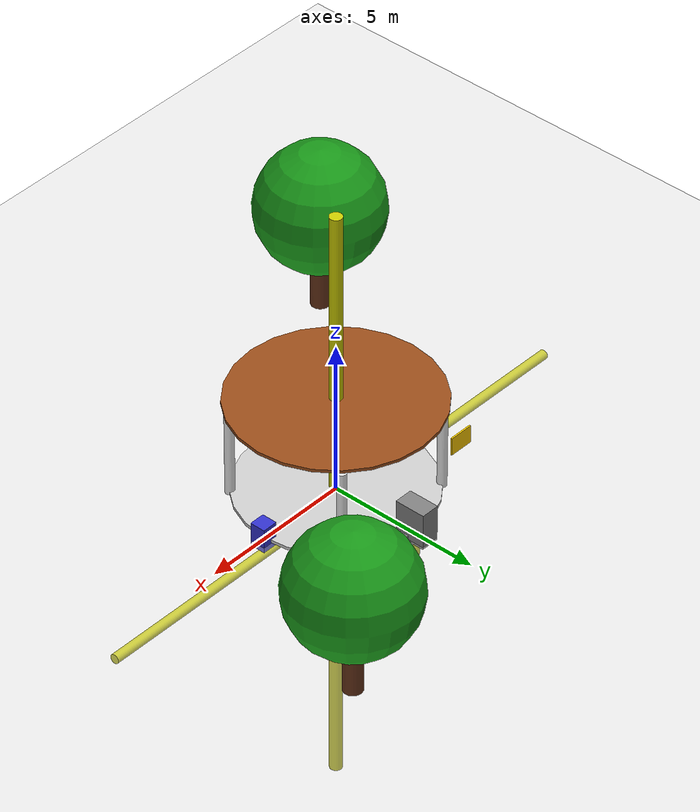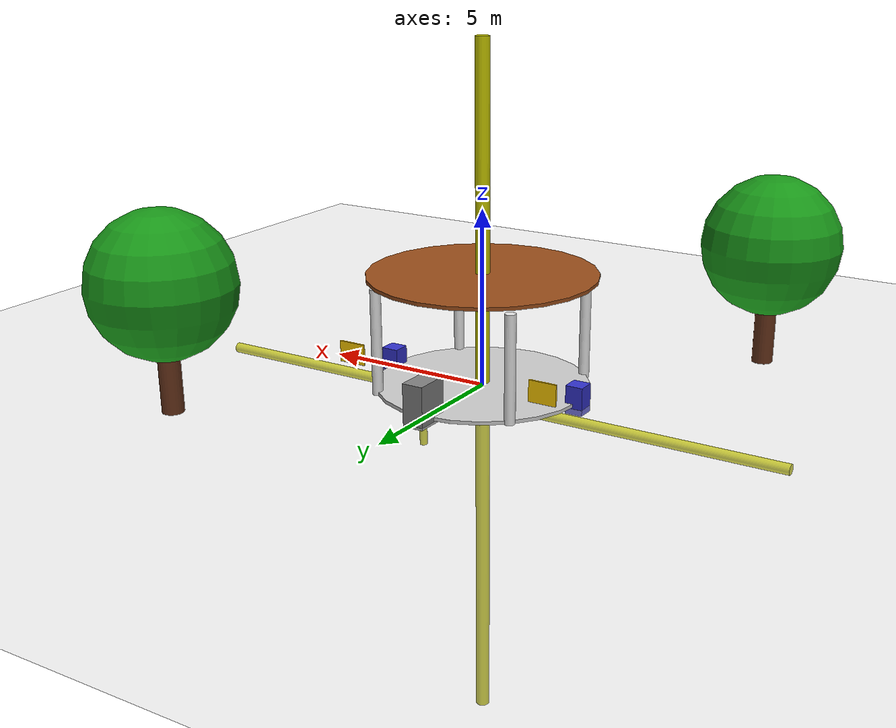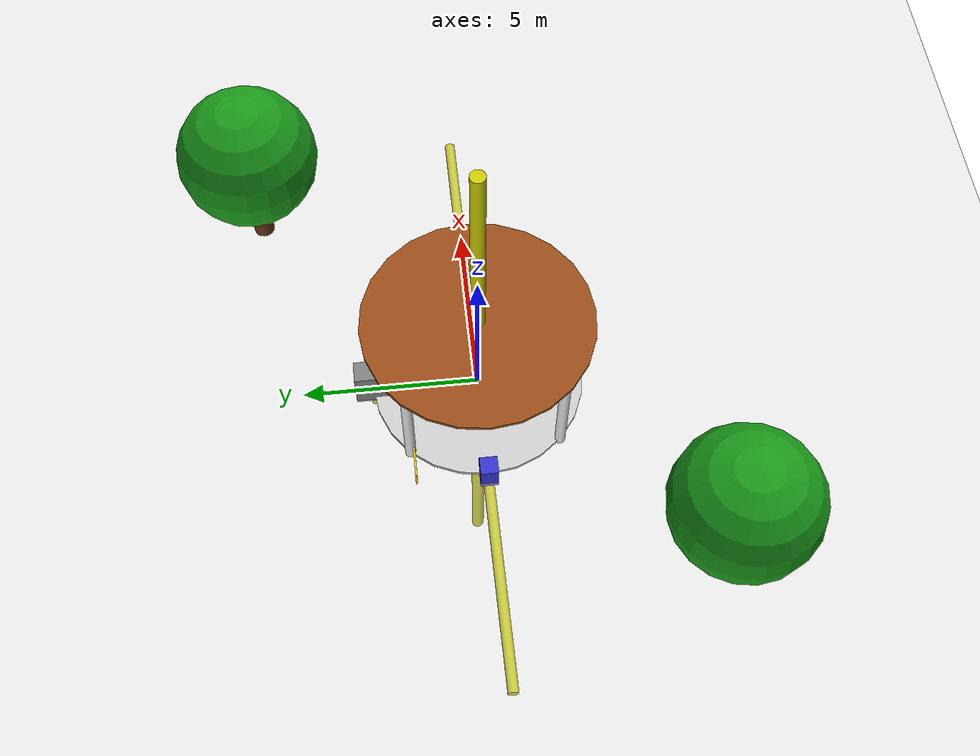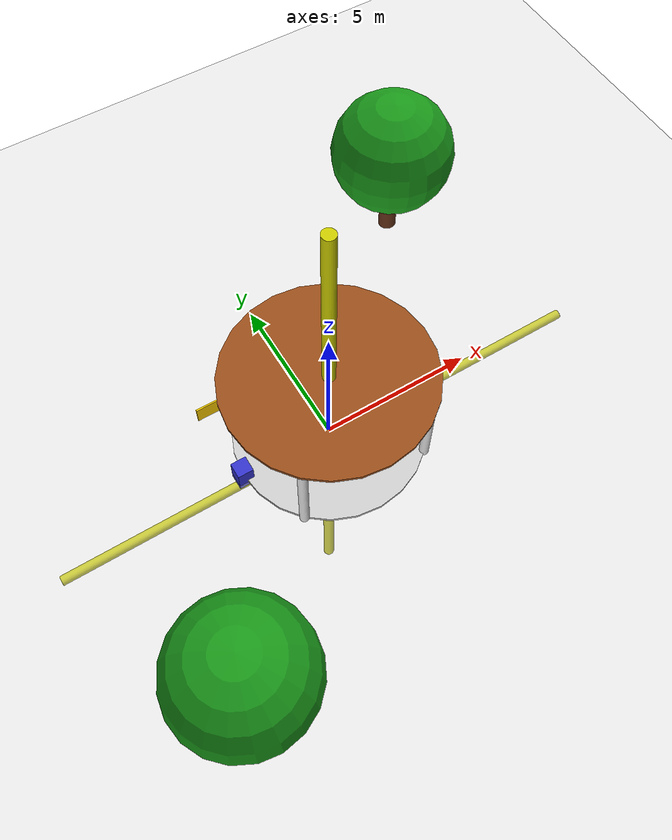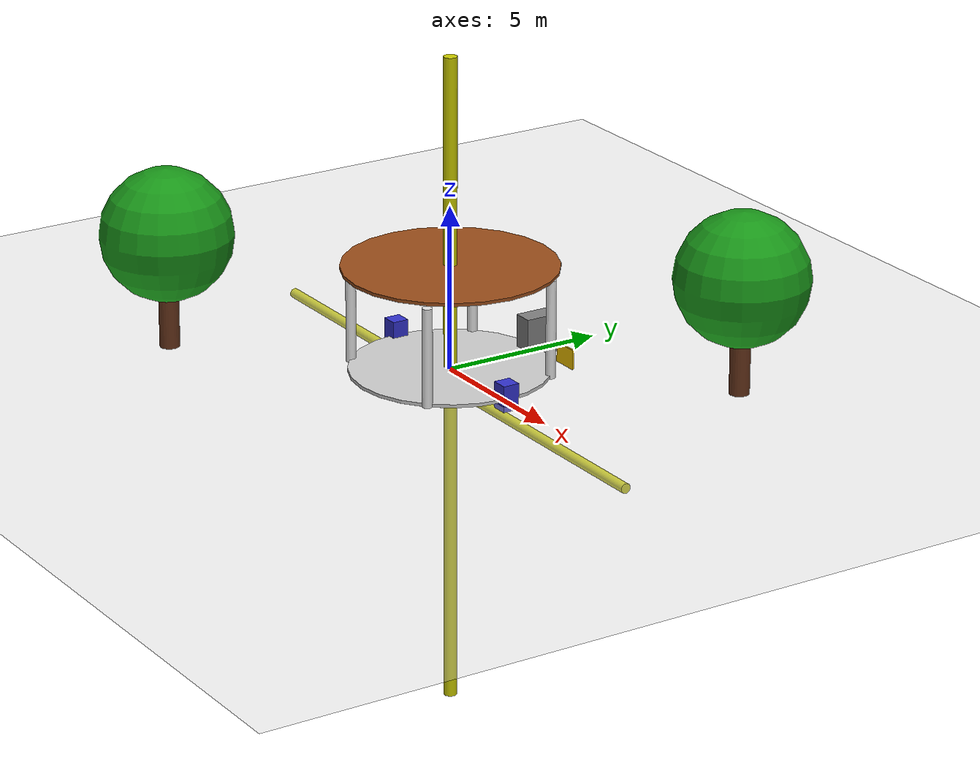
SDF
<sdf version="1.8">
 <world name="harmonic_gas_pipeline_world">
  <plugin filename="gz-sim-physics-system" name="gz::sim::systems::Physics"/>
  <plugin filename="gz-sim-user-commands-system" name="gz::sim::systems::UserCommands"/>
  <plugin filename="gz-sim-scene-broadcaster-system" name="gz::sim::systems::SceneBroadcaster"/>
  <plugin filename="gz-sim-contact-system" name="gz::sim::systems::Contact"/>
  <plugin filename="gz-sim-imu-system" name="gz::sim::systems::Imu"/>
  <plugin filename="gz-sim-sensors-system" name="gz::sim::systems::Sensors">
   <render_engine>ogre2</render_engine>
  </plugin>
  <physics name="1ms" type="ignored">
   <max_step_size>0.001</max_step_size>
   <real_time_factor>1.0</real_time_factor>
  </physics>
  <light type="directional" name="sun">
   <pose>0 0 10 0 0 0</pose>
   <diffuse>0.8 0.8 0.8 1</diffuse>
   <specular>0.2 0.2 0.2 1</specular>
   <attenuation>
    <range>1000</range>
    <constant>0.9</constant>
    <linear>0.01</linear>
    <quadratic>0.001</quadratic>
   </attenuation>
   <direction>-0.5 0.1 -0.9</direction>
  </light>
  <model name="ground_plane">
   <static>true</static>
   <link name="link">
    <collision name="collision"><geometry><plane><normal>0 0 1</normal></plane></geometry></collision>
    <visual name="visual">
     <geometry><plane><normal>0 0 1</normal><size>100 100</size></plane></geometry>
     <material>
      <ambient>0.8 0.8 0.8 1</ambient>
      <diffuse>0.8 0.8 0.8 1</diffuse>
      <specular>0 0 0 1</specular>
     </material>
    </visual>
   </link>
  </model>
  <model name="garden_gazebo">
   <static>true</static>
   <link name="gazebo_floor">
    <pose>0 0 0.05 0 0 0</pose>
    <collision name="floor_collision">
     <geometry><cylinder><radius>3.0</radius><length>0.1</length></cylinder></geometry>
    </collision>
    <visual name="floor_visual">
     <geometry><cylinder><radius>3.0</radius><length>0.1</length></cylinder></geometry>
     <material><ambient>0.8 0.8 0.8 1</ambient><diffuse>0.8 0.8 0.8 1</diffuse></material>
    </visual>
   </link>
   <link name="pillar_1">
    <pose>2.1 2.1 1.5 0 0 0</pose>
    <collision name="pillar_collision">
     <geometry><cylinder><radius>0.15</radius><length>3.0</length></cylinder></geometry>
    </collision>
    <visual name="pillar_visual">
     <geometry><cylinder><radius>0.15</radius><length>3.0</length></cylinder></geometry>
     <material><ambient>0.9 0.9 0.9 1</ambient><diffuse>0.9 0.9 0.9 1</diffuse></material>
    </visual>
   </link>
   <link name="pillar_2">
    <pose>-2.1 2.1 1.5 0 0 0</pose>
    <collision name="pillar_collision_2">
     <geometry><cylinder><radius>0.15</radius><length>3.0</length></cylinder></geometry>
    </collision>
    <visual name="pillar_visual_2">
     <geometry><cylinder><radius>0.15</radius><length>3.0</length></cylinder></geometry>
     <material><ambient>0.9 0.9 0.9 1</ambient><diffuse>0.9 0.9 0.9 1</diffuse></material>
    </visual>
   </link>
   <link name="pillar_3">
    <pose>2.1 -2.1 1.5 0 0 0</pose>
    <collision name="pillar_collision_3">
     <geometry><cylinder><radius>0.15</radius><length>3.0</length></cylinder></geometry>
    </collision>
    <visual name="pillar_visual_3">
     <geometry><cylinder><radius>0.15</radius><length>3.0</length></cylinder></geometry>
     <material><ambient>0.9 0.9 0.9 1</ambient><diffuse>0.9 0.9 0.9 1</diffuse></material>
    </visual>
   </link>
   <link name="pillar_4">
    <pose>-2.1 -2.1 1.5 0 0 0</pose>
    <collision name="pillar_collision_4">
     <geometry><cylinder><radius>0.15</radius><length>3.0</length></cylinder></geometry>
    </collision>
    <visual name="pillar_visual_4">
     <geometry><cylinder><radius>0.15</radius><length>3.0</length></cylinder></geometry>
     <material><ambient>0.9 0.9 0.9 1</ambient><diffuse>0.9 0.9 0.9 1</diffuse></material>
    </visual>
   </link>
   <link name="roof">
    <pose>0 0 3.2 0 0 0</pose>
    <collision name="roof_collision">
     <geometry><cylinder><radius>3.2</radius><length>0.1</length></cylinder></geometry>
    </collision>
    <visual name="roof_visual">
     <geometry><cylinder><radius>3.2</radius><length>0.1</length></cylinder></geometry>
     <material><ambient>0.6 0.3 0.1 1</ambient><diffuse>0.6 0.3 0.1 1</diffuse></material>
    </visual>
   </link>
  </model>
  <model name="gas_pipeline_system">
   <static>true</static>
   <link name="main_pipeline">
    <pose>0 0 -0.5 0 0 0</pose>
    <collision name="main_pipe_collision">
     <geometry><cylinder><radius>0.2</radius><length>20.0</length></cylinder></geometry>
    </collision>
    <visual name="main_pipe_visual">
     <geometry><cylinder><radius>0.2</radius><length>20.0</length></cylinder></geometry>
     <material><ambient>0.8 0.8 0.0 1</ambient><diffuse>0.8 0.8 0.0 1</diffuse></material>
    </visual>
   </link>
   <link name="branch_pipeline_1">
    <pose>5 0 -0.5 0 1.57 0</pose>
    <collision name="branch_pipe_collision_1">
     <geometry><cylinder><radius>0.15</radius><length>8.0</length></cylinder></geometry>
    </collision>
    <visual name="branch_pipe_visual_1">
     <geometry><cylinder><radius>0.15</radius><length>8.0</length></cylinder></geometry>
     <material><ambient>0.8 0.8 0.0 1</ambient><diffuse>0.8 0.8 0.0 1</diffuse></material>
    </visual>
   </link>
   <link name="branch_pipeline_2">
    <pose>-5 0 -0.5 0 1.57 0</pose>
    <collision name="branch_pipe_collision_2">
     <geometry><cylinder><radius>0.15</radius><length>8.0</length></cylinder></geometry>
    </collision>
    <visual name="branch_pipe_visual_2">
     <geometry><cylinder><radius>0.15</radius><length>8.0</length></cylinder></geometry>
     <material><ambient>0.8 0.8 0.0 1</ambient><diffuse>0.8 0.8 0.0 1</diffuse></material>
    </visual>
   </link>
   <link name="valve_1">
    <pose>3 0 0.2 0 0 0</pose>
    <collision name="valve_collision_1"><geometry><box><size>0.5 0.5 0.8</size></box></geometry></collision>
    <visual name="valve_visual_1">
     <geometry><box><size>0.5 0.5 0.8</size></box></geometry>
     <material><ambient>0.2 0.2 0.8 1</ambient><diffuse>0.2 0.2 0.8 1</diffuse></material>
    </visual>
   </link>
   <link name="valve_2">
    <pose>-3 0 0.2 0 0 0</pose>
    <collision name="valve_collision_2"><geometry><box><size>0.5 0.5 0.8</size></box></geometry></collision>
    <visual name="valve_visual_2">
     <geometry><box><size>0.5 0.5 0.8</size></box></geometry>
     <material><ambient>0.2 0.2 0.8 1</ambient><diffuse>0.2 0.2 0.8 1</diffuse></material>
    </visual>
   </link>
   <link name="gas_meter">
    <pose>0 3 0.5 0 0 1.57</pose>
    <collision name="meter_collision"><geometry><box><size>1.0 0.6 1.2</size></box></geometry></collision>
    <visual name="meter_visual">
     <geometry><box><size>1.0 0.6 1.2</size></box></geometry>
     <material><ambient>0.5 0.5 0.5 1</ambient><diffuse>0.5 0.5 0.5 1</diffuse></material>
    </visual>
   </link>
   <link name="connection_pipe">
    <pose>0 1.5 -0.2 0 1.57 1.57</pose>
    <collision name="connection_collision">
     <geometry><cylinder><radius>0.1</radius><length>3.0</length></cylinder></geometry>
    </collision>
    <visual name="connection_visual">
     <geometry><cylinder><radius>0.1</radius><length>3.0</length></cylinder></geometry>
     <material><ambient>0.8 0.8 0.0 1</ambient><diffuse>0.8 0.8 0.0 1</diffuse></material>
    </visual>
   </link>
   <link name="riser_pipe">
    <pose>0 3 -0.1 0 0 0</pose>
    <collision name="riser_collision">
     <geometry><cylinder><radius>0.1</radius><length>1.2</length></cylinder></geometry>
    </collision>
    <visual name="riser_visual">
     <geometry><cylinder><radius>0.1</radius><length>1.2</length></cylinder></geometry>
     <material><ambient>0.8 0.8 0.0 1</ambient><diffuse>0.8 0.8 0.0 1</diffuse></material>
    </visual>
   </link>
   <link name="warning_sign_1">
    <pose>3 2 1.0 0 0 0</pose>
    <collision name="sign_collision_1"><geometry><box><size>0.8 0.05 0.6</size></box></geometry></collision>
    <visual name="sign_visual_1">
     <geometry><box><size>0.8 0.05 0.6</size></box></geometry>
     <material><ambient>1.0 0.8 0.0 1</ambient><diffuse>1.0 0.8 0.0 1</diffuse></material>
    </visual>
   </link>
   <link name="warning_sign_2">
    <pose>-3 2 1.0 0 0 0</pose>
    <collision name="sign_collision_2"><geometry><box><size>0.8 0.05 0.6</size></box></geometry></collision>
    <visual name="sign_visual_2">
     <geometry><box><size>0.8 0.05 0.6</size></box></geometry>
     <material><ambient>1.0 0.8 0.0 1</ambient><diffuse>1.0 0.8 0.0 1</diffuse></material>
    </visual>
   </link>
  </model>
  <model name="tree_1">
   <static>true</static>
   <pose>-6 -6 0 0 0 0</pose>
   <link name="trunk_1">
    <pose>0 0 1.5 0 0 0</pose>
    <collision name="trunk_collision_1">
     <geometry><cylinder><radius>0.3</radius><length>3.0</length></cylinder></geometry>
    </collision>
    <visual name="trunk_visual_1">
     <geometry><cylinder><radius>0.3</radius><length>3.0</length></cylinder></geometry>
     <material><ambient>0.4 0.2 0.1 1</ambient><diffuse>0.4 0.2 0.1 1</diffuse></material>
    </visual>
   </link>
   <link name="canopy_1">
    <pose>0 0 3.5 0 0 0</pose>
    <collision name="canopy_collision_1"><geometry><sphere><radius>2.0</radius></sphere></geometry></collision>
    <visual name="canopy_visual_1">
     <geometry><sphere><radius>2.0</radius></sphere></geometry>
     <material><ambient>0.1 0.6 0.1 1</ambient><diffuse>0.1 0.6 0.1 1</diffuse></material>
    </visual>
   </link>
  </model>
  <model name="tree_2">
   <static>true</static>
   <pose>6 6 0 0 0 0</pose>
   <link name="trunk_2">
    <pose>0 0 1.5 0 0 0</pose>
    <collision name="trunk_collision_2">
     <geometry><cylinder><radius>0.3</radius><length>3.0</length></cylinder></geometry>
    </collision>
    <visual name="trunk_visual_2">
     <geometry><cylinder><radius>0.3</radius><length>3.0</length></cylinder></geometry>
     <material><ambient>0.4 0.2 0.1 1</ambient><diffuse>0.4 0.2 0.1 1</diffuse></material>
    </visual>
   </link>
   <link name="canopy_2">
    <pose>0 0 3.5 0 0 0</pose>
    <collision name="canopy_collision_2"><geometry><sphere><radius>2.0</radius></sphere></geometry></collision>
    <visual name="canopy_visual_2">
     <geometry><sphere><radius>2.0</radius></sphere></geometry>
     <material><ambient>0.1 0.6 0.1 1</ambient><diffuse>0.1 0.6 0.1 1</diffuse></material>
    </visual>
   </link>
  </model>
  <scene><ambient>0.4 0.4 0.4 1</ambient><background>0.7 0.7 1 1</background><shadows>1</shadows></scene>
 </world>
</sdf>
